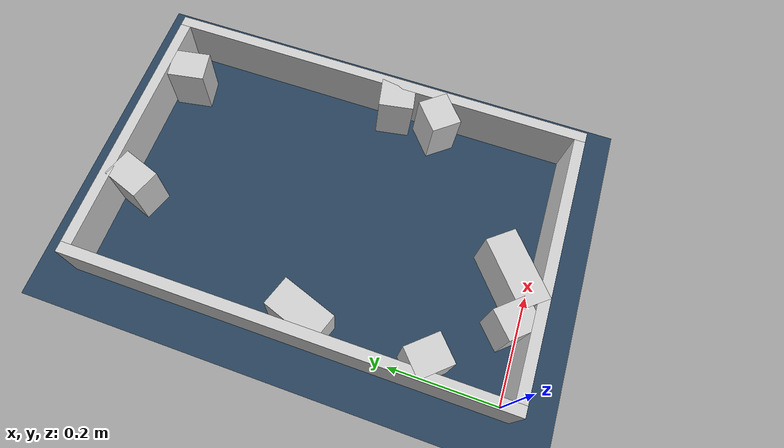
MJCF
<?xml version="1.0" ?>
<mujoco model="generated_real_template">
  <compiler angle="degree"/>
  <option timestep="0.002" integrator="implicitfast" iterations="100" cone="elliptic"/>
  <default>
    <geom density="1"/>
  </default>
  <asset>
    <texture builtin="gradient" height="3072" rgb1="0.3 0.5 0.7" rgb2="0 0 0" type="skybox" width="512"/>
    <texture builtin="checker" height="300" mark="edge" markrgb="0.8 0.8 0.8" name="groundplane" rgb1="0.2 0.3 0.4" rgb2="0.1 0.2 0.3" type="2d" width="300"/>
    <material name="groundplane" reflectance="0.2" texrepeat="5 5" texture="groundplane" texuniform="true"/>
  </asset>
  <worldbody>
    <light dir="0 0 -1" directional="true" pos="0 0 1.5"/>
    <geom name="floor" type="plane" condim="4" friction="0.5 0.005 0.001" material="groundplane" size="0 0 0.05"/>
    <body name="walls">
      <geom name="wall_boundary_left" type="box" condim="4" friction="1.0 0.005 0.0001" rgba="0.8 0.8 0.8 1" pos="-0.010000 0.387500 0.050000" euler="0 0 0.000000" size="0.010000 0.407500 0.050000"/>
      <geom name="wall_boundary_right" type="box" condim="4" friction="1.0 0.005 0.0001" rgba="0.8 0.8 0.8 1" pos="0.500000 0.387500 0.050000" euler="0 0 0.000000" size="0.010000 0.407500 0.050000"/>
      <geom name="wall_boundary_bottom" type="box" condim="4" friction="1.0 0.005 0.0001" rgba="0.8 0.8 0.8 1" pos="0.245000 -0.010000 0.050000" euler="0 0 0.000000" size="0.245000 0.010000 0.050000"/>
      <geom name="wall_boundary_top" type="box" condim="4" friction="1.0 0.005 0.0001" rgba="0.8 0.8 0.8 1" pos="0.245000 0.785000 0.050000" euler="0 0 0.000000" size="0.245000 0.010000 0.050000"/>
      <geom name="wall_inner_1_1" type="box" condim="4" friction="1.0 0.005 0.0001" rgba="0.8 0.8 0.8 1" pos="0.476338 0.335633 0.050000" euler="0 0 99.806981" size="0.032744 0.028500 0.050000"/>
      <geom name="wall_inner_1_2" type="box" condim="4" friction="1.0 0.005 0.0001" rgba="0.8 0.8 0.8 1" pos="0.406389 0.740301 0.050000" euler="0 0 99.806981" size="0.035213 0.028500 0.050000"/>
      <geom name="wall_inner_2_1" type="box" condim="4" friction="1.0 0.005 0.0001" rgba="0.8 0.8 0.8 1" pos="0.023696 0.145121 0.050000" euler="0 0 -48.613796" size="0.033748 0.028500 0.050000"/>
      <geom name="wall_inner_2_2" type="box" condim="4" friction="1.0 0.005 0.0001" rgba="0.8 0.8 0.8 1" pos="0.130228 0.024225 0.050000" euler="0 0 -48.613796" size="0.032288 0.028500 0.050000"/>
      <geom name="wall_inner_3_1" type="box" condim="4" friction="1.0 0.005 0.0001" rgba="0.8 0.8 0.8 1" pos="0.464255 0.249612 0.050000" euler="0 0 -140.742691" size="0.033249 0.028500 0.050000"/>
      <geom name="wall_inner_3_2" type="box" condim="4" friction="1.0 0.005 0.0001" rgba="0.8 0.8 0.8 1" pos="0.212220 0.043636 0.050000" euler="0 0 -140.742691" size="0.065688 0.028500 0.050000"/>
      <geom name="wall_inner_4_1" type="box" condim="4" friction="1.0 0.005 0.0001" rgba="0.8 0.8 0.8 1" pos="0.156324 0.740259 0.050000" euler="0 0 -109.493532" size="0.036854 0.028500 0.050000"/>
      <geom name="wall_inner_4_2" type="box" condim="4" friction="1.0 0.005 0.0001" rgba="0.8 0.8 0.8 1" pos="0.024277 0.367236 0.050000" euler="0 0 -109.493532" size="0.052173 0.028500 0.050000"/>
    </body>
  </worldbody>
</mujoco>
